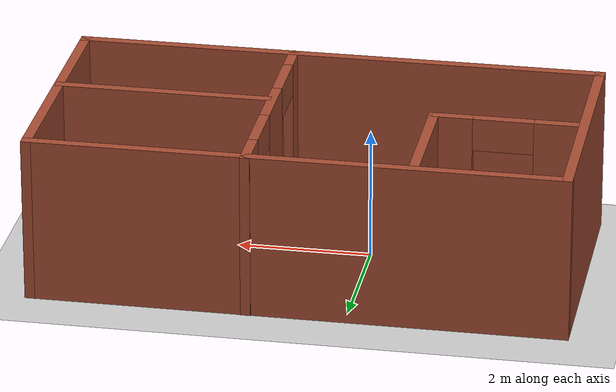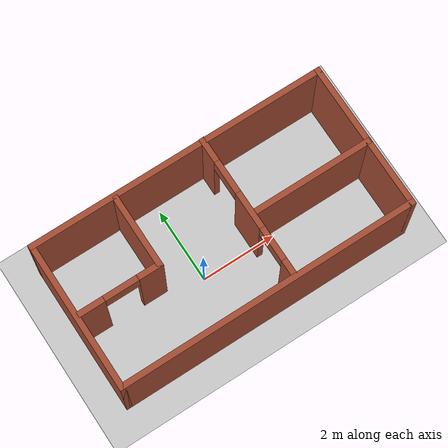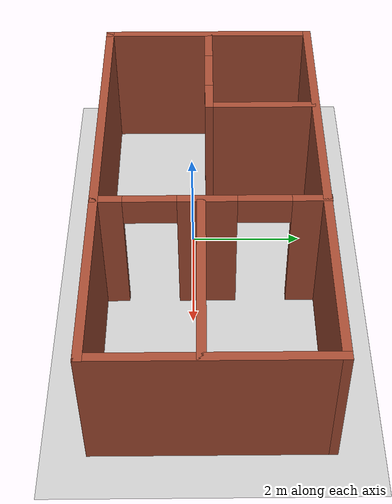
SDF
<sdf version="1.7">
 <world name="default">
  <light name="sun" type="directional">
   <pose>0 0 10 0 -0 0</pose>
   <diffuse>0.8 0.8 0.8 1</diffuse>
   <specular>0.2 0.2 0.2 1</specular>
   <attenuation>
    <range>1000</range>
    <constant>0.9</constant>
    <linear>0.01</linear>
    <quadratic>0.001</quadratic>
   </attenuation>
   <direction>-0.5 0.1 -0.9</direction>
   <spot><inner_angle>0</inner_angle><outer_angle>0</outer_angle><falloff>0</falloff></spot>
  </light>
  <model name="ground_plane">
   <static>1</static>
   <link name="link">
    <collision name="collision">
     <geometry><plane><normal>0 0 1</normal><size>100 100</size></plane></geometry>
     <surface>
      <contact><collide_bitmask>65535</collide_bitmask></contact>
      <friction><ode><mu>100</mu><mu2>50</mu2></ode></friction>
     </surface>
    </collision>
    <visual name="visual">
     <cast_shadows>0</cast_shadows>
     <geometry><plane><normal>0 0 1</normal><size>100 100</size></plane></geometry>
     <material>
      <script><uri>file://media/materials/scripts/gazebo.material</uri><name>Gazebo/Grey</name></script>
     </material>
    </visual>
   </link>
  </model>
  <gravity>0 0 -9.8</gravity>
  <magnetic_field>6e-06 2.3e-05 -4.2e-05</magnetic_field>
  <atmosphere type="adiabatic"/>
  <physics type="ode">
   <max_step_size>0.001</max_step_size>
   <real_time_factor>1</real_time_factor>
   <real_time_update_rate>1000</real_time_update_rate>
  </physics>
  <scene><ambient>0.4 0.4 0.4 1</ambient><background>0.7 0.7 0.7 1</background><shadows>1</shadows></scene>
  <spherical_coordinates>
   <surface_model>EARTH_WGS84</surface_model>
   <latitude_deg>0</latitude_deg>
   <longitude_deg>0</longitude_deg>
   <elevation>0</elevation>
   <heading_deg>0</heading_deg>
  </spherical_coordinates>
  <model name="mundo2">
   <pose>0.735 0.32 0 0 -0 0</pose>
   <link name="Wall_0">
    <collision name="Wall_0_Collision">
     <geometry><box><size>8 0.15 2.5</size></box></geometry>
     <pose>0 0 1.25 0 -0 0</pose>
    </collision>
    <visual name="Wall_0_Visual">
     <pose>0 0 1.25 0 -0 0</pose>
     <geometry><box><size>8 0.15 2.5</size></box></geometry>
     <material>
      <script><uri>file://media/materials/scripts/gazebo.material</uri><name>Gazebo/Bricks</name></script>
      <ambient>1 1 1 1</ambient>
     </material>
     <meta><layer>0</layer></meta>
    </visual>
    <pose>0 -1.93 0 0 -0 0</pose>
   </link>
   <link name="Wall_17">
    <pose>0.715 0.005 0 0 -0 -1.5708</pose>
    <visual name="Wall_17_Visual_0">
     <pose>-1.6675 0 1.25 0 -0 0</pose>
     <geometry><box><size>0.665 0.15 2.5</size></box></geometry>
     <material>
      <script><uri>file://media/materials/scripts/gazebo.material</uri><name>Gazebo/Bricks</name></script>
      <ambient>1 1 1 1</ambient>
     </material>
     <meta><layer>0</layer></meta>
    </visual>
    <collision name="Wall_17_Collision_0">
     <geometry><box><size>0.665 0.15 2.5</size></box></geometry>
     <pose>-1.6675 0 1.25 0 -0 0</pose>
    </collision>
    <visual name="Wall_17_Visual_1">
     <pose>0.065 0 1.25 0 -0 0</pose>
     <geometry><box><size>1 0.15 2.5</size></box></geometry>
     <material>
      <script><uri>file://media/materials/scripts/gazebo.material</uri><name>Gazebo/Bricks</name></script>
      <ambient>1 1 1 1</ambient>
     </material>
     <meta><layer>0</layer></meta>
    </visual>
    <collision name="Wall_17_Collision_1">
     <geometry><box><size>1 0.15 2.5</size></box></geometry>
     <pose>0.065 0 1.25 0 -0 0</pose>
    </collision>
    <visual name="Wall_17_Visual_2">
     <pose>1.7325 0 1.25 0 -0 0</pose>
     <geometry><box><size>0.535 0.15 2.5</size></box></geometry>
     <material>
      <script><uri>file://media/materials/scripts/gazebo.material</uri><name>Gazebo/Bricks</name></script>
      <ambient>1 1 1 1</ambient>
     </material>
     <meta><layer>0</layer></meta>
    </visual>
    <collision name="Wall_17_Collision_2">
     <geometry><box><size>0.535 0.15 2.5</size></box></geometry>
     <pose>1.7325 0 1.25 0 -0 0</pose>
    </collision>
    <visual name="Wall_17_Visual_3">
     <pose>-0.885 0 2.25 0 -0 0</pose>
     <geometry><box><size>0.9 0.15 0.5</size></box></geometry>
     <material>
      <script><uri>file://media/materials/scripts/gazebo.material</uri><name>Gazebo/Bricks</name></script>
      <ambient>1 1 1 1</ambient>
     </material>
     <meta><layer>0</layer></meta>
    </visual>
    <collision name="Wall_17_Collision_3">
     <geometry><box><size>0.9 0.15 0.5</size></box></geometry>
     <pose>-0.885 0 2.25 0 -0 0</pose>
    </collision>
    <visual name="Wall_17_Visual_4">
     <pose>1.015 0 2.25 0 -0 0</pose>
     <geometry><box><size>0.9 0.15 0.5</size></box></geometry>
     <material>
      <script><uri>file://media/materials/scripts/gazebo.material</uri><name>Gazebo/Bricks</name></script>
      <ambient>1 1 1 1</ambient>
     </material>
     <meta><layer>0</layer></meta>
    </visual>
    <collision name="Wall_17_Collision_4">
     <geometry><box><size>0.9 0.15 0.5</size></box></geometry>
     <pose>1.015 0 2.25 0 -0 0</pose>
    </collision>
   </link>
   <link name="Wall_21">
    <collision name="Wall_21_Collision">
     <geometry><box><size>3.25 0.15 2.5</size></box></geometry>
     <pose>0 0 1.25 0 -0 0</pose>
    </collision>
    <visual name="Wall_21_Visual">
     <pose>0 0 1.25 0 -0 0</pose>
     <geometry><box><size>3.25 0.15 2.5</size></box></geometry>
     <material>
      <script><uri>file://media/materials/scripts/gazebo.material</uri><name>Gazebo/Bricks</name></script>
      <ambient>1 1 1 1</ambient>
     </material>
     <meta><layer>0</layer></meta>
    </visual>
    <pose>2.355 -0.16 0 0 -0 0</pose>
   </link>
   <link name="Wall_23">
    <collision name="Wall_23_Collision">
     <geometry><box><size>2 0.15 2.5</size></box></geometry>
     <pose>0 0 1.25 0 -0 0</pose>
    </collision>
    <visual name="Wall_23_Visual">
     <pose>0 0 1.25 0 -0 0</pose>
     <geometry><box><size>2 0.15 2.5</size></box></geometry>
     <material>
      <script><uri>file://media/materials/scripts/gazebo.material</uri><name>Gazebo/Bricks</name></script>
      <ambient>1 1 1 1</ambient>
     </material>
     <meta><layer>0</layer></meta>
    </visual>
    <pose>-1.715 0.915 0 0 -0 -1.5708</pose>
   </link>
   <link name="Wall_24">
    <pose>-2.765 -0.01 0 0 -0 3.14159</pose>
    <visual name="Wall_24_Visual_0">
     <pose>-0.7975 0 1.25 0 -0 0</pose>
     <geometry><box><size>0.655 0.15 2.5</size></box></geometry>
     <material>
      <script><uri>file://media/materials/scripts/gazebo.material</uri><name>Gazebo/Bricks</name></script>
      <ambient>1 1 1 1</ambient>
     </material>
     <meta><layer>0</layer></meta>
    </visual>
    <collision name="Wall_24_Collision_0">
     <geometry><box><size>0.655 0.15 2.5</size></box></geometry>
     <pose>-0.7975 0 1.25 0 -0 0</pose>
    </collision>
    <visual name="Wall_24_Visual_1">
     <pose>0.7775 0 1.25 0 -0 0</pose>
     <geometry><box><size>0.695 0.15 2.5</size></box></geometry>
     <material>
      <script><uri>file://media/materials/scripts/gazebo.material</uri><name>Gazebo/Bricks</name></script>
      <ambient>1 1 1 1</ambient>
     </material>
     <meta><layer>0</layer></meta>
    </visual>
    <collision name="Wall_24_Collision_1">
     <geometry><box><size>0.695 0.15 2.5</size></box></geometry>
     <pose>0.7775 0 1.25 0 -0 0</pose>
    </collision>
    <visual name="Wall_24_Visual_2">
     <pose>-0.02 0 2.25 0 -0 0</pose>
     <geometry><box><size>0.9 0.15 0.5</size></box></geometry>
     <material>
      <script><uri>file://media/materials/scripts/gazebo.material</uri><name>Gazebo/Bricks</name></script>
      <ambient>1 1 1 1</ambient>
     </material>
     <meta><layer>0</layer></meta>
    </visual>
    <collision name="Wall_24_Collision_2">
     <geometry><box><size>0.9 0.15 0.5</size></box></geometry>
     <pose>-0.02 0 2.25 0 -0 0</pose>
    </collision>
   </link>
   <link name="Wall_3">
    <collision name="Wall_3_Collision">
     <geometry><box><size>4 0.15 2.5</size></box></geometry>
     <pose>0 0 1.25 0 -0 0</pose>
    </collision>
    <visual name="Wall_3_Visual">
     <pose>0 0 1.25 0 -0 0</pose>
     <geometry><box><size>4 0.15 2.5</size></box></geometry>
     <material>
      <script><uri>file://media/materials/scripts/gazebo.material</uri><name>Gazebo/Bricks</name></script>
      <ambient>1 1 1 1</ambient>
     </material>
     <meta><layer>0</layer></meta>
    </visual>
    <pose>3.925 -0.005 0 0 -0 1.5708</pose>
   </link>
   <link name="Wall_4">
    <collision name="Wall_4_Collision">
     <geometry><box><size>8 0.15 2.5</size></box></geometry>
     <pose>0 0 1.25 0 -0 0</pose>
    </collision>
    <visual name="Wall_4_Visual">
     <pose>0 0 1.25 0 -0 0</pose>
     <geometry><box><size>8 0.15 2.5</size></box></geometry>
     <material>
      <script><uri>file://media/materials/scripts/gazebo.material</uri><name>Gazebo/Bricks</name></script>
      <ambient>1 1 1 1</ambient>
     </material>
     <meta><layer>0</layer></meta>
    </visual>
    <pose>0 1.92 0 0 -0 3.14159</pose>
   </link>
   <link name="Wall_5">
    <collision name="Wall_5_Collision">
     <geometry><box><size>4 0.15 2.5</size></box></geometry>
     <pose>0 0 1.25 0 -0 0</pose>
    </collision>
    <visual name="Wall_5_Visual">
     <pose>0 0 1.25 0 -0 0</pose>
     <geometry><box><size>4 0.15 2.5</size></box></geometry>
     <material>
      <script><uri>file://media/materials/scripts/gazebo.material</uri><name>Gazebo/Bricks</name></script>
      <ambient>1 1 1 1</ambient>
     </material>
     <meta><layer>0</layer></meta>
    </visual>
    <pose>-3.925 -0.005 0 0 -0 -1.5708</pose>
   </link>
   <static>1</static>
  </model>
 </world>
</sdf>
